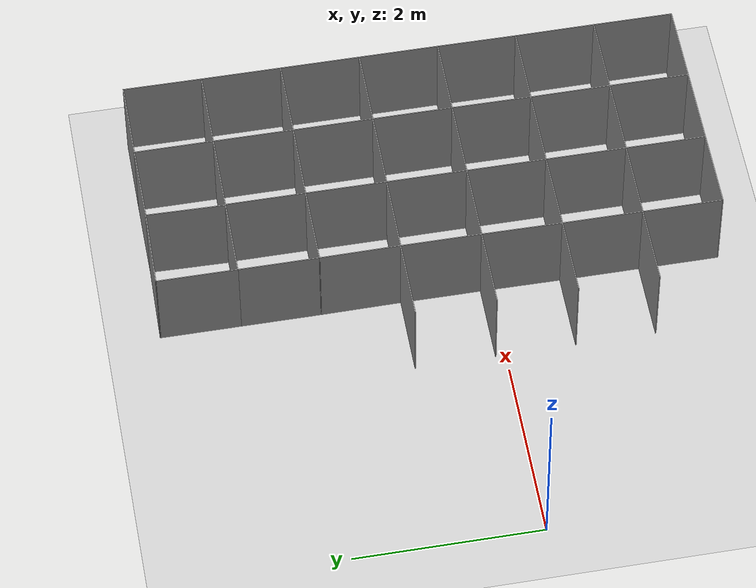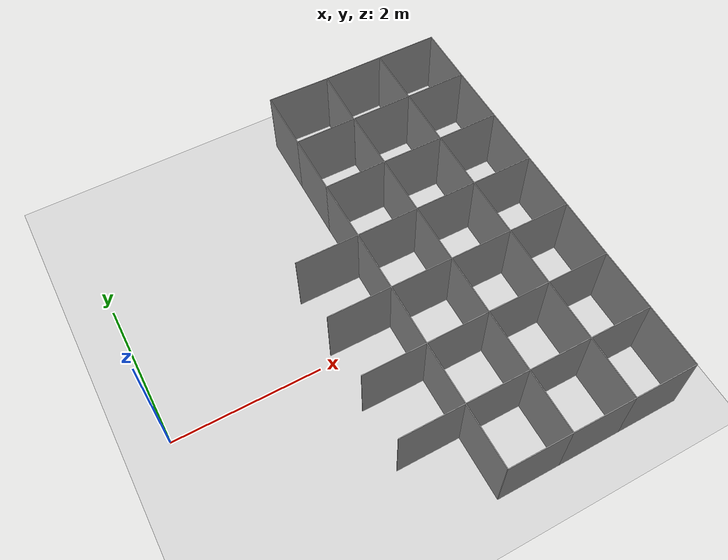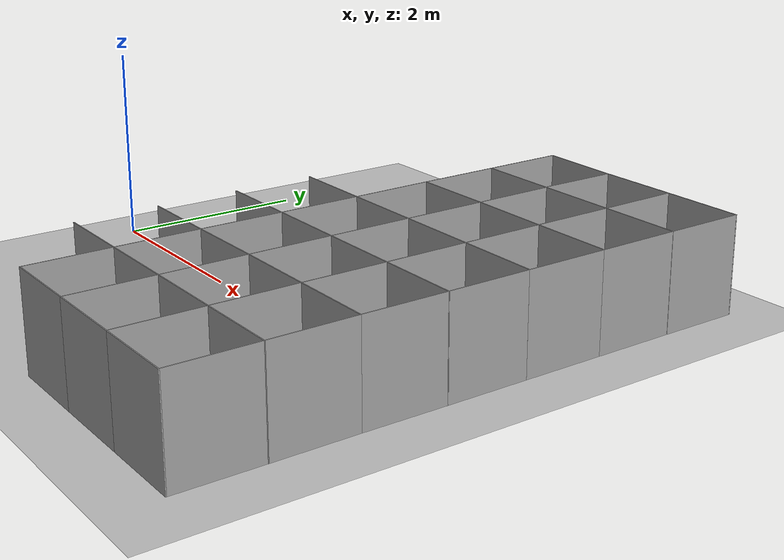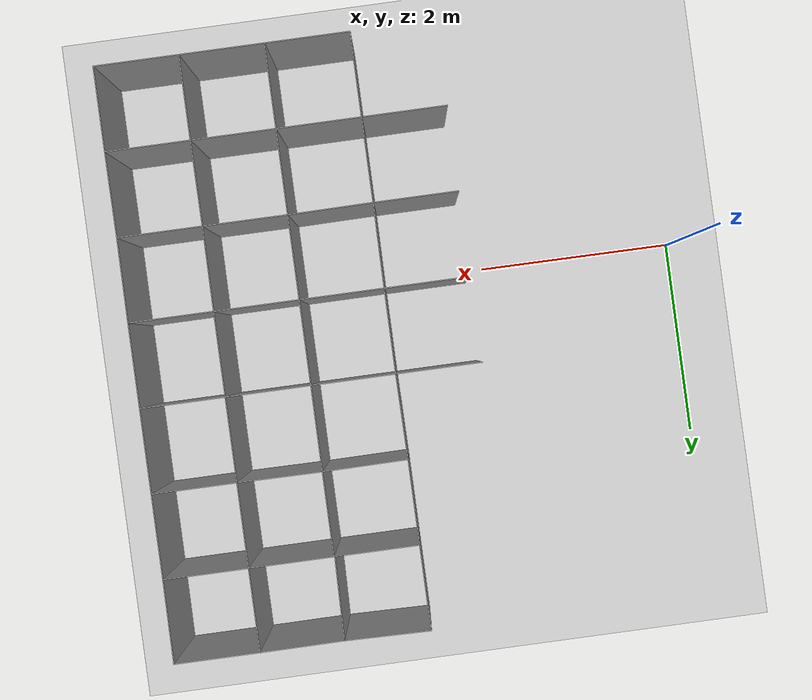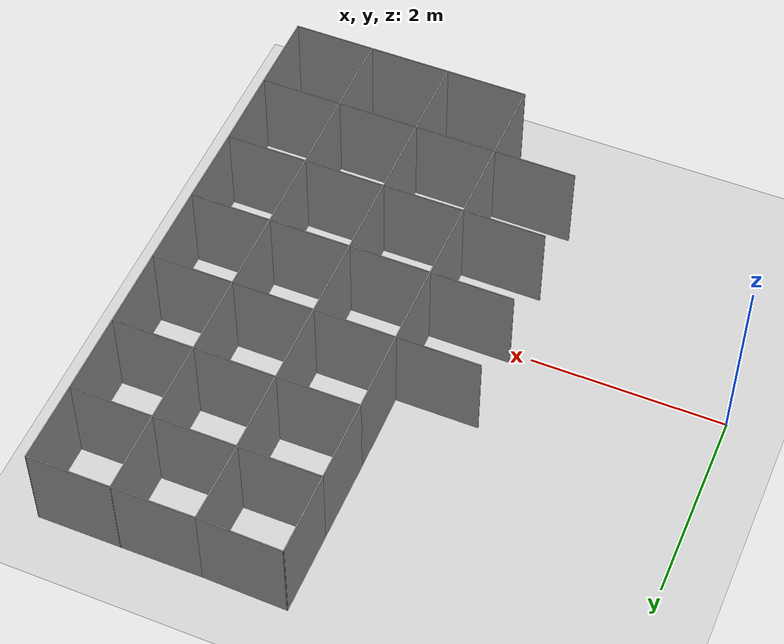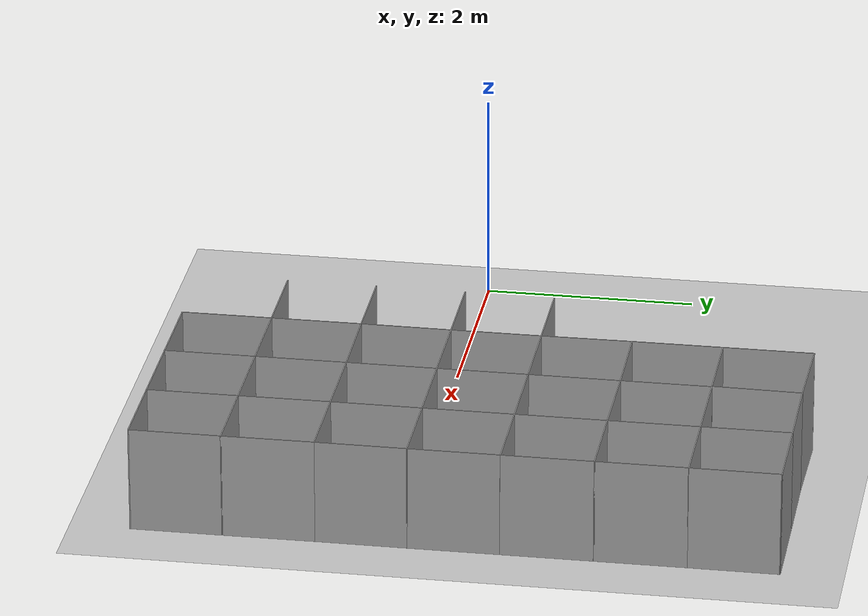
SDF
<sdf version="1.7">
 <world name="default">
  <include><uri>model://sun</uri></include>
  <include><uri>model://ground_plane</uri></include>
  <model name="Template">
   <pose>2.61937 0.534035 0 0 -0 0</pose>
   <link name="Wall_107">
    <collision name="Wall_107_Collision">
     <geometry><box><size>0.860029 0.01 1</size></box></geometry>
     <pose>0 0 0.5 0 -0 0</pose>
    </collision>
    <visual name="Wall_107_Visual">
     <pose>0 0 0.5 0 -0 0</pose>
     <geometry><box><size>0.860029 0.01 1</size></box></geometry>
     <material>
      <script><uri>file://media/materials/scripts/gazebo.material</uri><name>Gazebo/Grey</name></script>
      <ambient>1 1 1 1</ambient>
     </material>
     <meta><layer>0</layer></meta>
    </visual>
    <pose>0.432128 0.849965 0 0 -0 -1.56256</pose>
   </link>
   <link name="Wall_108">
    <collision name="Wall_108_Collision">
     <geometry><box><size>0.853 0.01 1</size></box></geometry>
     <pose>0 0 0.5 0 -0 0</pose>
    </collision>
    <visual name="Wall_108_Visual">
     <pose>0 0 0.5 0 -0 0</pose>
     <geometry><box><size>0.853 0.01 1</size></box></geometry>
     <material>
      <script><uri>file://media/materials/scripts/gazebo.material</uri><name>Gazebo/Grey</name></script>
      <ambient>1 1 1 1</ambient>
     </material>
     <meta><layer>0</layer></meta>
    </visual>
    <pose>0.857128 0.424965 0 0 -0 0</pose>
   </link>
   <link name="Wall_109">
    <collision name="Wall_109_Collision">
     <geometry><box><size>0.866126 0.01 1</size></box></geometry>
     <pose>0 0 0.5 0 -0 0</pose>
    </collision>
    <visual name="Wall_109_Visual">
     <pose>0 0 0.5 0 -0 0</pose>
     <geometry><box><size>0.866126 0.01 1</size></box></geometry>
     <material>
      <script><uri>file://media/materials/scripts/gazebo.material</uri><name>Gazebo/Grey</name></script>
      <ambient>1 1 1 1</ambient>
     </material>
     <meta><layer>0</layer></meta>
    </visual>
    <pose>1.27977 0.853028 0 0 -0 1.56812</pose>
   </link>
   <link name="Wall_110">
    <collision name="Wall_110_Collision">
     <geometry><box><size>0.857731 0.01 1</size></box></geometry>
     <pose>0 0 0.5 0 -0 0</pose>
    </collision>
    <visual name="Wall_110_Visual">
     <pose>0 0 0.5 0 -0 0</pose>
     <geometry><box><size>0.857731 0.01 1</size></box></geometry>
     <material>
      <script><uri>file://media/materials/scripts/gazebo.material</uri><name>Gazebo/Grey</name></script>
      <ambient>1 1 1 1</ambient>
     </material>
     <meta><layer>0</layer></meta>
    </visual>
    <pose>1.70477 1.27803 0 0 -0 -0.007226</pose>
   </link>
   <link name="Wall_111">
    <collision name="Wall_111_Collision">
     <geometry><box><size>0.86 0.01 1</size></box></geometry>
     <pose>0 0 0.5 0 -0 0</pose>
    </collision>
    <visual name="Wall_111_Visual">
     <pose>0 0 0.5 0 -0 0</pose>
     <geometry><box><size>0.86 0.01 1</size></box></geometry>
     <material>
      <script><uri>file://media/materials/scripts/gazebo.material</uri><name>Gazebo/Grey</name></script>
      <ambient>1 1 1 1</ambient>
     </material>
     <meta><layer>0</layer></meta>
    </visual>
    <pose>2.12863 0.849965 0 0 -0 -1.5708</pose>
   </link>
   <link name="Wall_112">
    <collision name="Wall_112_Collision">
     <geometry><box><size>0.86 0.01 1</size></box></geometry>
     <pose>0 0 0.5 0 -0 0</pose>
    </collision>
    <visual name="Wall_112_Visual">
     <pose>0 0 0.5 0 -0 0</pose>
     <geometry><box><size>0.86 0.01 1</size></box></geometry>
     <material>
      <script><uri>file://media/materials/scripts/gazebo.material</uri><name>Gazebo/Grey</name></script>
      <ambient>1 1 1 1</ambient>
     </material>
     <meta><layer>0</layer></meta>
    </visual>
    <pose>2.55363 0.424965 0 0 -0 0</pose>
   </link>
   <link name="Wall_115">
    <collision name="Wall_115_Collision">
     <geometry><box><size>0.86 0.01 1</size></box></geometry>
     <pose>0 0 0.5 0 -0 0</pose>
    </collision>
    <visual name="Wall_115_Visual">
     <pose>0 0 0.5 0 -0 0</pose>
     <geometry><box><size>0.86 0.01 1</size></box></geometry>
     <material>
      <script><uri>file://media/materials/scripts/gazebo.material</uri><name>Gazebo/Grey</name></script>
      <ambient>1 1 1 1</ambient>
     </material>
     <meta><layer>0</layer></meta>
    </visual>
    <pose>2.55363 1.27496 0 0 -0 3.14159</pose>
   </link>
   <link name="Wall_116">
    <collision name="Wall_116_Collision">
     <geometry><box><size>0.859555 0.01 1</size></box></geometry>
     <pose>0 0 0.5 0 -0 0</pose>
    </collision>
    <visual name="Wall_116_Visual">
     <pose>0 0 0.5 0 -0 0</pose>
     <geometry><box><size>0.859555 0.01 1</size></box></geometry>
     <material>
      <script><uri>file://media/materials/scripts/gazebo.material</uri><name>Gazebo/Grey</name></script>
      <ambient>1 1 1 1</ambient>
     </material>
     <meta><layer>0</layer></meta>
    </visual>
    <pose>2.12863 1.69996 0 0 -0 1.5708</pose>
   </link>
   <link name="Wall_117">
    <collision name="Wall_117_Collision">
     <geometry><box><size>0.866864 0.01 1</size></box></geometry>
     <pose>0 0 0.5 0 -0 0</pose>
    </collision>
    <visual name="Wall_117_Visual">
     <pose>0 0 0.5 0 -0 0</pose>
     <geometry><box><size>0.866864 0.01 1</size></box></geometry>
     <material>
      <script><uri>file://media/materials/scripts/gazebo.material</uri><name>Gazebo/Grey</name></script>
      <ambient>1 1 1 1</ambient>
     </material>
     <meta><layer>0</layer></meta>
    </visual>
    <pose>1.7002 2.12496 0 0 -0 3.14159</pose>
   </link>
   <link name="Wall_118">
    <collision name="Wall_118_Collision">
     <geometry><box><size>0.853879 0.01 1</size></box></geometry>
     <pose>0 0 0.5 0 -0 0</pose>
    </collision>
    <visual name="Wall_118_Visual">
     <pose>0 0 0.5 0 -0 0</pose>
     <geometry><box><size>0.853879 0.01 1</size></box></geometry>
     <material>
      <script><uri>file://media/materials/scripts/gazebo.material</uri><name>Gazebo/Grey</name></script>
      <ambient>1 1 1 1</ambient>
     </material>
     <meta><layer>0</layer></meta>
    </visual>
    <pose>1.28056 1.70303 0 0 -0 -1.56994</pose>
   </link>
   <link name="Wall_119">
    <collision name="Wall_119_Collision">
     <geometry><box><size>0.862313 0.01 1</size></box></geometry>
     <pose>0 0 0.5 0 -0 0</pose>
    </collision>
    <visual name="Wall_119_Visual">
     <pose>0 0 0.5 0 -0 0</pose>
     <geometry><box><size>0.862313 0.01 1</size></box></geometry>
     <material>
      <script><uri>file://media/materials/scripts/gazebo.material</uri><name>Gazebo/Grey</name></script>
      <ambient>1 1 1 1</ambient>
     </material>
     <meta><layer>0</layer></meta>
    </visual>
    <pose>0.854773 1.27803 0 0 -0 -3.13441</pose>
   </link>
   <link name="Wall_120">
    <collision name="Wall_120_Collision">
     <geometry><box><size>0.859555 0.01 1</size></box></geometry>
     <pose>0 0 0.5 0 -0 0</pose>
    </collision>
    <visual name="Wall_120_Visual">
     <pose>0 0 0.5 0 -0 0</pose>
     <geometry><box><size>0.859555 0.01 1</size></box></geometry>
     <material>
      <script><uri>file://media/materials/scripts/gazebo.material</uri><name>Gazebo/Grey</name></script>
      <ambient>1 1 1 1</ambient>
     </material>
     <meta><layer>0</layer></meta>
    </visual>
    <pose>0.428628 1.69996 0 0 -0 1.5708</pose>
   </link>
   <link name="Wall_136">
    <collision name="Wall_136_Collision">
     <geometry><box><size>0.86 0.01 1</size></box></geometry>
     <pose>0 0 0.5 0 -0 0</pose>
    </collision>
    <visual name="Wall_136_Visual">
     <pose>0 0 0.5 0 -0 0</pose>
     <geometry><box><size>0.86 0.01 1</size></box></geometry>
     <material>
      <script><uri>file://media/materials/scripts/gazebo.material</uri><name>Gazebo/Grey</name></script>
      <ambient>1 1 1 1</ambient>
     </material>
     <meta><layer>0</layer></meta>
    </visual>
    <pose>0.428628 2.54996 0 0 -0 -1.5708</pose>
   </link>
   <link name="Wall_137">
    <collision name="Wall_137_Collision">
     <geometry><box><size>0.853136 0.01 1</size></box></geometry>
     <pose>0 0 0.5 0 -0 0</pose>
    </collision>
    <visual name="Wall_137_Visual">
     <pose>0 0 0.5 0 -0 0</pose>
     <geometry><box><size>0.853136 0.01 1</size></box></geometry>
     <material>
      <script><uri>file://media/materials/scripts/gazebo.material</uri><name>Gazebo/Grey</name></script>
      <ambient>1 1 1 1</ambient>
     </material>
     <meta><layer>0</layer></meta>
    </visual>
    <pose>0.850196 2.12496 0 0 -0 0</pose>
   </link>
   <link name="Wall_138">
    <collision name="Wall_138_Collision">
     <geometry><box><size>0.84306 0.01 1</size></box></geometry>
     <pose>0 0 0.5 0 -0 0</pose>
    </collision>
    <visual name="Wall_138_Visual">
     <pose>0 0 0.5 0 -0 0</pose>
     <geometry><box><size>0.84306 0.01 1</size></box></geometry>
     <material>
      <script><uri>file://media/materials/scripts/gazebo.material</uri><name>Gazebo/Grey</name></script>
      <ambient>1 1 1 1</ambient>
     </material>
     <meta><layer>0</layer></meta>
    </visual>
    <pose>1.2802 2.54147 0 0 -0 1.55055</pose>
   </link>
   <link name="Wall_140">
    <collision name="Wall_140_Collision">
     <geometry><box><size>0.847001 0.01 1</size></box></geometry>
     <pose>0 0 0.5 0 -0 0</pose>
    </collision>
    <visual name="Wall_140_Visual">
     <pose>0 0 0.5 0 -0 0</pose>
     <geometry><box><size>0.847001 0.01 1</size></box></geometry>
     <material>
      <script><uri>file://media/materials/scripts/gazebo.material</uri><name>Gazebo/Grey</name></script>
      <ambient>1 1 1 1</ambient>
     </material>
     <meta><layer>0</layer></meta>
    </visual>
    <pose>2.12813 2.54346 0 0 -0 -1.5696</pose>
   </link>
   <link name="Wall_141">
    <collision name="Wall_141_Collision">
     <geometry><box><size>0.86 0.01 1</size></box></geometry>
     <pose>0 0 0.5 0 -0 0</pose>
    </collision>
    <visual name="Wall_141_Visual">
     <pose>0 0 0.5 0 -0 0</pose>
     <geometry><box><size>0.86 0.01 1</size></box></geometry>
     <material>
      <script><uri>file://media/materials/scripts/gazebo.material</uri><name>Gazebo/Grey</name></script>
      <ambient>1 1 1 1</ambient>
     </material>
     <meta><layer>0</layer></meta>
    </visual>
    <pose>2.55363 2.12496 0 0 -0 0</pose>
   </link>
   <link name="Wall_142">
    <collision name="Wall_142_Collision">
     <geometry><box><size>0.84701 0.01 1</size></box></geometry>
     <pose>0 0 0.5 0 -0 0</pose>
    </collision>
    <visual name="Wall_142_Visual">
     <pose>0 0 0.5 0 -0 0</pose>
     <geometry><box><size>0.84701 0.01 1</size></box></geometry>
     <material>
      <script><uri>file://media/materials/scripts/gazebo.material</uri><name>Gazebo/Grey</name></script>
      <ambient>1 1 1 1</ambient>
     </material>
     <meta><layer>0</layer></meta>
    </visual>
    <pose>2.98063 2.54346 0 0 -0 1.56602</pose>
   </link>
   <link name="Wall_143">
    <collision name="Wall_143_Collision">
     <geometry><box><size>0.865 0.01 1</size></box></geometry>
     <pose>0 0 0.5 0 -0 0</pose>
    </collision>
    <visual name="Wall_143_Visual">
     <pose>0 0 0.5 0 -0 0</pose>
     <geometry><box><size>0.865 0.01 1</size></box></geometry>
     <material>
      <script><uri>file://media/materials/scripts/gazebo.material</uri><name>Gazebo/Grey</name></script>
      <ambient>1 1 1 1</ambient>
     </material>
     <meta><layer>0</layer></meta>
    </visual>
    <pose>2.55513 2.96197 0 0 -0 3.14159</pose>
   </link>
   <link name="Wall_144">
    <collision name="Wall_144_Collision">
     <geometry><box><size>0.84901 0.01 1</size></box></geometry>
     <pose>0 0 0.5 0 -0 0</pose>
    </collision>
    <visual name="Wall_144_Visual">
     <pose>0 0 0.5 0 -0 0</pose>
     <geometry><box><size>0.84901 0.01 1</size></box></geometry>
     <material>
      <script><uri>file://media/materials/scripts/gazebo.material</uri><name>Gazebo/Grey</name></script>
      <ambient>1 1 1 1</ambient>
     </material>
     <meta><layer>0</layer></meta>
    </visual>
    <pose>1.70813 2.95996 0 0 -0 -3.13682</pose>
   </link>
   <link name="Wall_145">
    <collision name="Wall_145_Collision">
     <geometry><box><size>0.870168 0.01 1</size></box></geometry>
     <pose>0 0 0.5 0 -0 0</pose>
    </collision>
    <visual name="Wall_145_Visual">
     <pose>0 0 0.5 0 -0 0</pose>
     <geometry><box><size>0.870168 0.01 1</size></box></geometry>
     <material>
      <script><uri>file://media/materials/scripts/gazebo.material</uri><name>Gazebo/Grey</name></script>
      <ambient>1 1 1 1</ambient>
     </material>
     <meta><layer>0</layer></meta>
    </visual>
    <pose>0.858628 2.96646 0 0 -0 3.12183</pose>
   </link>
   <link name="Wall_161">
    <collision name="Wall_161_Collision">
     <geometry><box><size>0.860147 0.01 1</size></box></geometry>
     <pose>0 0 0.5 0 -0 0</pose>
    </collision>
    <visual name="Wall_161_Visual">
     <pose>0 0 0.5 0 -0 0</pose>
     <geometry><box><size>0.860147 0.01 1</size></box></geometry>
     <material>
      <script><uri>file://media/materials/scripts/gazebo.material</uri><name>Gazebo/Grey</name></script>
      <ambient>1 1 1 1</ambient>
     </material>
     <meta><layer>0</layer></meta>
    </visual>
    <pose>0.853628 -2.97504 0 0 -0 0</pose>
   </link>
   <link name="Wall_162">
    <collision name="Wall_162_Collision">
     <geometry><box><size>0.860147 0.01 1</size></box></geometry>
     <pose>0 0 0.5 0 -0 0</pose>
    </collision>
    <visual name="Wall_162_Visual">
     <pose>0 0 0.5 0 -0 0</pose>
     <geometry><box><size>0.860147 0.01 1</size></box></geometry>
     <material>
      <script><uri>file://media/materials/scripts/gazebo.material</uri><name>Gazebo/Grey</name></script>
      <ambient>1 1 1 1</ambient>
     </material>
     <meta><layer>0</layer></meta>
    </visual>
    <pose>1.70363 -2.97504 0 0 -0 0</pose>
   </link>
   <link name="Wall_163">
    <collision name="Wall_163_Collision">
     <geometry><box><size>0.860147 0.01 1</size></box></geometry>
     <pose>0 0 0.5 0 -0 0</pose>
    </collision>
    <visual name="Wall_163_Visual">
     <pose>0 0 0.5 0 -0 0</pose>
     <geometry><box><size>0.860147 0.01 1</size></box></geometry>
     <material>
      <script><uri>file://media/materials/scripts/gazebo.material</uri><name>Gazebo/Grey</name></script>
      <ambient>1 1 1 1</ambient>
     </material>
     <meta><layer>0</layer></meta>
    </visual>
    <pose>2.55363 -2.97504 0 0 -0 0</pose>
   </link>
   <link name="Wall_164">
    <collision name="Wall_164_Collision">
     <geometry><box><size>0.859555 0.01 1</size></box></geometry>
     <pose>0 0 0.5 0 -0 0</pose>
    </collision>
    <visual name="Wall_164_Visual">
     <pose>0 0 0.5 0 -0 0</pose>
     <geometry><box><size>0.859555 0.01 1</size></box></geometry>
     <material>
      <script><uri>file://media/materials/scripts/gazebo.material</uri><name>Gazebo/Grey</name></script>
      <ambient>1 1 1 1</ambient>
     </material>
     <meta><layer>0</layer></meta>
    </visual>
    <pose>2.97863 -2.55003 0 0 -0 1.5708</pose>
   </link>
   <link name="Wall_165">
    <collision name="Wall_165_Collision">
     <geometry><box><size>0.864282 0.01 1</size></box></geometry>
     <pose>0 0 0.5 0 -0 0</pose>
    </collision>
    <visual name="Wall_165_Visual">
     <pose>0 0 0.5 0 -0 0</pose>
     <geometry><box><size>0.864282 0.01 1</size></box></geometry>
     <material>
      <script><uri>file://media/materials/scripts/gazebo.material</uri><name>Gazebo/Grey</name></script>
      <ambient>1 1 1 1</ambient>
     </material>
     <meta><layer>0</layer></meta>
    </visual>
    <pose>2.97663 -1.69803 0 0 -0 1.57548</pose>
   </link>
   <link name="Wall_166">
    <collision name="Wall_166_Collision">
     <geometry><box><size>0.855565 0.01 1</size></box></geometry>
     <pose>0 0 0.5 0 -0 0</pose>
    </collision>
    <visual name="Wall_166_Visual">
     <pose>0 0 0.5 0 -0 0</pose>
     <geometry><box><size>0.855565 0.01 1</size></box></geometry>
     <material>
      <script><uri>file://media/materials/scripts/gazebo.material</uri><name>Gazebo/Grey</name></script>
      <ambient>1 1 1 1</ambient>
     </material>
     <meta><layer>0</layer></meta>
    </visual>
    <pose>2.97663 -0.848035 0 0 -0 1.56607</pose>
   </link>
   <link name="Wall_167">
    <collision name="Wall_167_Collision">
     <geometry><box><size>0.859555 0.01 1</size></box></geometry>
     <pose>0 0 0.5 0 -0 0</pose>
    </collision>
    <visual name="Wall_167_Visual">
     <pose>0 0 0.5 0 -0 0</pose>
     <geometry><box><size>0.859555 0.01 1</size></box></geometry>
     <material>
      <script><uri>file://media/materials/scripts/gazebo.material</uri><name>Gazebo/Grey</name></script>
      <ambient>1 1 1 1</ambient>
     </material>
     <meta><layer>0</layer></meta>
    </visual>
    <pose>2.97863 -3.5e-05 0 0 -0 1.5708</pose>
   </link>
   <link name="Wall_168">
    <collision name="Wall_168_Collision">
     <geometry><box><size>0.859555 0.01 1</size></box></geometry>
     <pose>0 0 0.5 0 -0 0</pose>
    </collision>
    <visual name="Wall_168_Visual">
     <pose>0 0 0.5 0 -0 0</pose>
     <geometry><box><size>0.859555 0.01 1</size></box></geometry>
     <material>
      <script><uri>file://media/materials/scripts/gazebo.material</uri><name>Gazebo/Grey</name></script>
      <ambient>1 1 1 1</ambient>
     </material>
     <meta><layer>0</layer></meta>
    </visual>
    <pose>2.97863 0.849965 0 0 -0 1.5708</pose>
   </link>
   <link name="Wall_169">
    <collision name="Wall_169_Collision">
     <geometry><box><size>0.859555 0.01 1</size></box></geometry>
     <pose>0 0 0.5 0 -0 0</pose>
    </collision>
    <visual name="Wall_169_Visual">
     <pose>0 0 0.5 0 -0 0</pose>
     <geometry><box><size>0.859555 0.01 1</size></box></geometry>
     <material>
      <script><uri>file://media/materials/scripts/gazebo.material</uri><name>Gazebo/Grey</name></script>
      <ambient>1 1 1 1</ambient>
     </material>
     <meta><layer>0</layer></meta>
    </visual>
    <pose>2.97863 1.69996 0 0 -0 1.5708</pose>
   </link>
   <link name="Wall_50">
    <collision name="Wall_50_Collision">
     <geometry><box><size>0.86 0.01 1</size></box></geometry>
     <pose>0 0 0.5 0 -0 0</pose>
    </collision>
    <visual name="Wall_50_Visual">
     <pose>0 0 0.5 0 -0 0</pose>
     <geometry><box><size>0.86 0.01 1</size></box></geometry>
     <material>
      <script><uri>file://media/materials/scripts/gazebo.material</uri><name>Gazebo/Grey</name></script>
      <ambient>1 1 1 1</ambient>
     </material>
     <meta><layer>0</layer></meta>
    </visual>
    <pose>0.003628 -2.12504 0 0 -0 0</pose>
   </link>
   <link name="Wall_51">
    <collision name="Wall_51_Collision">
     <geometry><box><size>0.86 0.01 1</size></box></geometry>
     <pose>0 0 0.5 0 -0 0</pose>
    </collision>
    <visual name="Wall_51_Visual">
     <pose>0 0 0.5 0 -0 0</pose>
     <geometry><box><size>0.86 0.01 1</size></box></geometry>
     <material>
      <script><uri>file://media/materials/scripts/gazebo.material</uri><name>Gazebo/Grey</name></script>
      <ambient>1 1 1 1</ambient>
     </material>
     <meta><layer>0</layer></meta>
    </visual>
    <pose>0.428628 -2.55003 0 0 -0 -1.5708</pose>
   </link>
   <link name="Wall_53">
    <collision name="Wall_53_Collision">
     <geometry><box><size>0.859555 0.01 1</size></box></geometry>
     <pose>0 0 0.5 0 -0 0</pose>
    </collision>
    <visual name="Wall_53_Visual">
     <pose>0 0 0.5 0 -0 0</pose>
     <geometry><box><size>0.859555 0.01 1</size></box></geometry>
     <material>
      <script><uri>file://media/materials/scripts/gazebo.material</uri><name>Gazebo/Grey</name></script>
      <ambient>1 1 1 1</ambient>
     </material>
     <meta><layer>0</layer></meta>
    </visual>
    <pose>1.27863 -2.55003 0 0 -0 1.5708</pose>
   </link>
   <link name="Wall_54">
    <collision name="Wall_54_Collision">
     <geometry><box><size>0.86 0.01 1</size></box></geometry>
     <pose>0 0 0.5 0 -0 0</pose>
    </collision>
    <visual name="Wall_54_Visual">
     <pose>0 0 0.5 0 -0 0</pose>
     <geometry><box><size>0.86 0.01 1</size></box></geometry>
     <material>
      <script><uri>file://media/materials/scripts/gazebo.material</uri><name>Gazebo/Grey</name></script>
      <ambient>1 1 1 1</ambient>
     </material>
     <meta><layer>0</layer></meta>
    </visual>
    <pose>1.70363 -2.12504 0 0 -0 0</pose>
   </link>
   <link name="Wall_55">
    <collision name="Wall_55_Collision">
     <geometry><box><size>0.86 0.01 1</size></box></geometry>
     <pose>0 0 0.5 0 -0 0</pose>
    </collision>
    <visual name="Wall_55_Visual">
     <pose>0 0 0.5 0 -0 0</pose>
     <geometry><box><size>0.86 0.01 1</size></box></geometry>
     <material>
      <script><uri>file://media/materials/scripts/gazebo.material</uri><name>Gazebo/Grey</name></script>
      <ambient>1 1 1 1</ambient>
     </material>
     <meta><layer>0</layer></meta>
    </visual>
    <pose>2.12863 -2.55003 0 0 -0 -1.5708</pose>
   </link>
   <link name="Wall_58">
    <collision name="Wall_58_Collision">
     <geometry><box><size>0.86 0.01 1</size></box></geometry>
     <pose>0 0 0.5 0 -0 0</pose>
    </collision>
    <visual name="Wall_58_Visual">
     <pose>0 0 0.5 0 -0 0</pose>
     <geometry><box><size>0.86 0.01 1</size></box></geometry>
     <material>
      <script><uri>file://media/materials/scripts/gazebo.material</uri><name>Gazebo/Grey</name></script>
      <ambient>1 1 1 1</ambient>
     </material>
     <meta><layer>0</layer></meta>
    </visual>
    <pose>2.55363 -2.12504 0 0 -0 3.14159</pose>
   </link>
   <link name="Wall_59">
    <collision name="Wall_59_Collision">
     <geometry><box><size>0.864282 0.01 1</size></box></geometry>
     <pose>0 0 0.5 0 -0 0</pose>
    </collision>
    <visual name="Wall_59_Visual">
     <pose>0 0 0.5 0 -0 0</pose>
     <geometry><box><size>0.864282 0.01 1</size></box></geometry>
     <material>
      <script><uri>file://media/materials/scripts/gazebo.material</uri><name>Gazebo/Grey</name></script>
      <ambient>1 1 1 1</ambient>
     </material>
     <meta><layer>0</layer></meta>
    </visual>
    <pose>2.12663 -1.69803 0 0 -0 1.57548</pose>
   </link>
   <link name="Wall_60">
    <collision name="Wall_60_Collision">
     <geometry><box><size>0.856002 0.01 1</size></box></geometry>
     <pose>0 0 0.5 0 -0 0</pose>
    </collision>
    <visual name="Wall_60_Visual">
     <pose>0 0 0.5 0 -0 0</pose>
     <geometry><box><size>0.856002 0.01 1</size></box></geometry>
     <material>
      <script><uri>file://media/materials/scripts/gazebo.material</uri><name>Gazebo/Grey</name></script>
      <ambient>1 1 1 1</ambient>
     </material>
     <meta><layer>0</layer></meta>
    </visual>
    <pose>1.70163 -1.27004 0 0 -0 3.13923</pose>
   </link>
   <link name="Wall_61">
    <collision name="Wall_61_Collision">
     <geometry><box><size>0.866 0.01 1</size></box></geometry>
     <pose>0 0 0.5 0 -0 0</pose>
    </collision>
    <visual name="Wall_61_Visual">
     <pose>0 0 0.5 0 -0 0</pose>
     <geometry><box><size>0.866 0.01 1</size></box></geometry>
     <material>
      <script><uri>file://media/materials/scripts/gazebo.material</uri><name>Gazebo/Grey</name></script>
      <ambient>1 1 1 1</ambient>
     </material>
     <meta><layer>0</layer></meta>
    </visual>
    <pose>1.27863 -1.69704 0 0 -0 -1.5708</pose>
   </link>
   <link name="Wall_62">
    <collision name="Wall_62_Collision">
     <geometry><box><size>0.86 0.01 1</size></box></geometry>
     <pose>0 0 0.5 0 -0 0</pose>
    </collision>
    <visual name="Wall_62_Visual">
     <pose>0 0 0.5 0 -0 0</pose>
     <geometry><box><size>0.86 0.01 1</size></box></geometry>
     <material>
      <script><uri>file://media/materials/scripts/gazebo.material</uri><name>Gazebo/Grey</name></script>
      <ambient>1 1 1 1</ambient>
     </material>
     <meta><layer>0</layer></meta>
    </visual>
    <pose>0.853628 -2.12504 0 0 -0 3.14159</pose>
   </link>
   <link name="Wall_63">
    <collision name="Wall_63_Collision">
     <geometry><box><size>0.859555 0.01 1</size></box></geometry>
     <pose>0 0 0.5 0 -0 0</pose>
    </collision>
    <visual name="Wall_63_Visual">
     <pose>0 0 0.5 0 -0 0</pose>
     <geometry><box><size>0.859555 0.01 1</size></box></geometry>
     <material>
      <script><uri>file://media/materials/scripts/gazebo.material</uri><name>Gazebo/Grey</name></script>
      <ambient>1 1 1 1</ambient>
     </material>
     <meta><layer>0</layer></meta>
    </visual>
    <pose>0.428628 -1.70003 0 0 -0 1.5708</pose>
   </link>
   <link name="Wall_64">
    <collision name="Wall_64_Collision">
     <geometry><box><size>0.86 0.01 1</size></box></geometry>
     <pose>0 0 0.5 0 -0 0</pose>
    </collision>
    <visual name="Wall_64_Visual">
     <pose>0 0 0.5 0 -0 0</pose>
     <geometry><box><size>0.86 0.01 1</size></box></geometry>
     <material>
      <script><uri>file://media/materials/scripts/gazebo.material</uri><name>Gazebo/Grey</name></script>
      <ambient>1 1 1 1</ambient>
     </material>
     <meta><layer>0</layer></meta>
    </visual>
    <pose>0.003628 -1.27503 0 0 -0 3.14159</pose>
   </link>
   <link name="Wall_78">
    <collision name="Wall_78_Collision">
     <geometry><box><size>0.866 0.01 1</size></box></geometry>
     <pose>0 0 0.5 0 -0 0</pose>
    </collision>
    <visual name="Wall_78_Visual">
     <pose>0 0 0.5 0 -0 0</pose>
     <geometry><box><size>0.866 0.01 1</size></box></geometry>
     <material>
      <script><uri>file://media/materials/scripts/gazebo.material</uri><name>Gazebo/Grey</name></script>
      <ambient>1 1 1 1</ambient>
     </material>
     <meta><layer>0</layer></meta>
    </visual>
    <pose>0.006628 -0.425035 0 0 -0 0</pose>
   </link>
   <link name="Wall_79">
    <collision name="Wall_79_Collision">
     <geometry><box><size>0.86 0.01 1</size></box></geometry>
     <pose>0 0 0.5 0 -0 0</pose>
    </collision>
    <visual name="Wall_79_Visual">
     <pose>0 0 0.5 0 -0 0</pose>
     <geometry><box><size>0.86 0.01 1</size></box></geometry>
     <material>
      <script><uri>file://media/materials/scripts/gazebo.material</uri><name>Gazebo/Grey</name></script>
      <ambient>1 1 1 1</ambient>
     </material>
     <meta><layer>0</layer></meta>
    </visual>
    <pose>0.431628 -0.850035 0 0 -0 -1.57786</pose>
   </link>
   <link name="Wall_80">
    <collision name="Wall_80_Collision">
     <geometry><box><size>0.860024 0.01 1</size></box></geometry>
     <pose>0 0 0.5 0 -0 0</pose>
    </collision>
    <visual name="Wall_80_Visual">
     <pose>0 0 0.5 0 -0 0</pose>
     <geometry><box><size>0.860024 0.01 1</size></box></geometry>
     <material>
      <script><uri>file://media/materials/scripts/gazebo.material</uri><name>Gazebo/Grey</name></script>
      <ambient>1 1 1 1</ambient>
     </material>
     <meta><layer>0</layer></meta>
    </visual>
    <pose>0.853628 -1.27204 0 0 -0 0.007059</pose>
   </link>
   <link name="Wall_81">
    <collision name="Wall_81_Collision">
     <geometry><box><size>0.854 0.01 1</size></box></geometry>
     <pose>0 0 0.5 0 -0 0</pose>
    </collision>
    <visual name="Wall_81_Visual">
     <pose>0 0 0.5 0 -0 0</pose>
     <geometry><box><size>0.854 0.01 1</size></box></geometry>
     <material>
      <script><uri>file://media/materials/scripts/gazebo.material</uri><name>Gazebo/Grey</name></script>
      <ambient>1 1 1 1</ambient>
     </material>
     <meta><layer>0</layer></meta>
    </visual>
    <pose>1.27863 -0.847035 0 0 -0 1.5708</pose>
   </link>
   <link name="Wall_82">
    <collision name="Wall_82_Collision">
     <geometry><box><size>0.86 0.01 1</size></box></geometry>
     <pose>0 0 0.5 0 -0 0</pose>
    </collision>
    <visual name="Wall_82_Visual">
     <pose>0 0 0.5 0 -0 0</pose>
     <geometry><box><size>0.86 0.01 1</size></box></geometry>
     <material>
      <script><uri>file://media/materials/scripts/gazebo.material</uri><name>Gazebo/Grey</name></script>
      <ambient>1 1 1 1</ambient>
     </material>
     <meta><layer>0</layer></meta>
    </visual>
    <pose>1.70363 -0.425035 0 0 -0 0</pose>
   </link>
   <link name="Wall_83">
    <collision name="Wall_83_Collision">
     <geometry><box><size>0.856009 0.01 1</size></box></geometry>
     <pose>0 0 0.5 0 -0 0</pose>
    </collision>
    <visual name="Wall_83_Visual">
     <pose>0 0 0.5 0 -0 0</pose>
     <geometry><box><size>0.856009 0.01 1</size></box></geometry>
     <material>
      <script><uri>file://media/materials/scripts/gazebo.material</uri><name>Gazebo/Grey</name></script>
      <ambient>1 1 1 1</ambient>
     </material>
     <meta><layer>0</layer></meta>
    </visual>
    <pose>2.12663 -0.848035 0 0 -0 -1.57552</pose>
   </link>
   <link name="Wall_84">
    <collision name="Wall_84_Collision">
     <geometry><box><size>0.85976 0.01 1</size></box></geometry>
     <pose>0 0 0.5 0 -0 0</pose>
    </collision>
    <visual name="Wall_84_Visual">
     <pose>0 0 0.5 0 -0 0</pose>
     <geometry><box><size>0.85976 0.01 1</size></box></geometry>
     <material>
      <script><uri>file://media/materials/scripts/gazebo.material</uri><name>Gazebo/Grey</name></script>
      <ambient>1 1 1 1</ambient>
     </material>
     <meta><layer>0</layer></meta>
    </visual>
    <pose>2.54963 -1.27103 0 0 -0 0</pose>
   </link>
   <link name="Wall_86">
    <collision name="Wall_86_Collision">
     <geometry><box><size>0.86 0.01 1</size></box></geometry>
     <pose>0 0 0.5 0 -0 0</pose>
    </collision>
    <visual name="Wall_86_Visual">
     <pose>0 0 0.5 0 -0 0</pose>
     <geometry><box><size>0.86 0.01 1</size></box></geometry>
     <material>
      <script><uri>file://media/materials/scripts/gazebo.material</uri><name>Gazebo/Grey</name></script>
      <ambient>1 1 1 1</ambient>
     </material>
     <meta><layer>0</layer></meta>
    </visual>
    <pose>2.55363 -0.425035 0 0 -0 3.14159</pose>
   </link>
   <link name="Wall_87">
    <collision name="Wall_87_Collision">
     <geometry><box><size>0.86 0.01 1</size></box></geometry>
     <pose>0 0 0.5 0 -0 0</pose>
    </collision>
    <visual name="Wall_87_Visual">
     <pose>0 0 0.5 0 -0 0</pose>
     <geometry><box><size>0.86 0.01 1</size></box></geometry>
     <material>
      <script><uri>file://media/materials/scripts/gazebo.material</uri><name>Gazebo/Grey</name></script>
      <ambient>1 1 1 1</ambient>
     </material>
     <meta><layer>0</layer></meta>
    </visual>
    <pose>2.12863 -3.5e-05 0 0 -0 1.5708</pose>
   </link>
   <link name="Wall_88">
    <collision name="Wall_88_Collision">
     <geometry><box><size>0.86 0.01 1</size></box></geometry>
     <pose>0 0 0.5 0 -0 0</pose>
    </collision>
    <visual name="Wall_88_Visual">
     <pose>0 0 0.5 0 -0 0</pose>
     <geometry><box><size>0.86 0.01 1</size></box></geometry>
     <material>
      <script><uri>file://media/materials/scripts/gazebo.material</uri><name>Gazebo/Grey</name></script>
      <ambient>1 1 1 1</ambient>
     </material>
     <meta><layer>0</layer></meta>
    </visual>
    <pose>1.70363 0.424965 0 0 -0 3.14159</pose>
   </link>
   <link name="Wall_89">
    <collision name="Wall_89_Collision">
     <geometry><box><size>0.86 0.01 1</size></box></geometry>
     <pose>0 0 0.5 0 -0 0</pose>
    </collision>
    <visual name="Wall_89_Visual">
     <pose>0 0 0.5 0 -0 0</pose>
     <geometry><box><size>0.86 0.01 1</size></box></geometry>
     <material>
      <script><uri>file://media/materials/scripts/gazebo.material</uri><name>Gazebo/Grey</name></script>
      <ambient>1 1 1 1</ambient>
     </material>
     <meta><layer>0</layer></meta>
    </visual>
    <pose>1.27863 -3.5e-05 0 0 -0 -1.5708</pose>
   </link>
   <link name="Wall_90">
    <collision name="Wall_90_Collision">
     <geometry><box><size>0.854 0.01 1</size></box></geometry>
     <pose>0 0 0.5 0 -0 0</pose>
    </collision>
    <visual name="Wall_90_Visual">
     <pose>0 0 0.5 0 -0 0</pose>
     <geometry><box><size>0.854 0.01 1</size></box></geometry>
     <material>
      <script><uri>file://media/materials/scripts/gazebo.material</uri><name>Gazebo/Grey</name></script>
      <ambient>1 1 1 1</ambient>
     </material>
     <meta><layer>0</layer></meta>
    </visual>
    <pose>0.856628 -0.425035 0 0 -0 3.14159</pose>
   </link>
   <link name="Wall_91">
    <collision name="Wall_91_Collision">
     <geometry><box><size>0.859555 0.01 1</size></box></geometry>
     <pose>0 0 0.5 0 -0 0</pose>
    </collision>
    <visual name="Wall_91_Visual">
     <pose>0 0 0.5 0 -0 0</pose>
     <geometry><box><size>0.859555 0.01 1</size></box></geometry>
     <material>
      <script><uri>file://media/materials/scripts/gazebo.material</uri><name>Gazebo/Grey</name></script>
      <ambient>1 1 1 1</ambient>
     </material>
     <meta><layer>0</layer></meta>
    </visual>
    <pose>0.435128 -3.5e-05 0 0 -0 1.56962</pose>
   </link>
   <link name="Wall_92">
    <collision name="Wall_92_Collision">
     <geometry><box><size>0.867 0.01 1</size></box></geometry>
     <pose>0 0 0.5 0 -0 0</pose>
    </collision>
    <visual name="Wall_92_Visual">
     <pose>0 0 0.5 0 -0 0</pose>
     <geometry><box><size>0.867 0.01 1</size></box></geometry>
     <material>
      <script><uri>file://media/materials/scripts/gazebo.material</uri><name>Gazebo/Grey</name></script>
      <ambient>1 1 1 1</ambient>
     </material>
     <meta><layer>0</layer></meta>
    </visual>
    <pose>0.007128 0.424965 0 0 -0 3.14159</pose>
   </link>
   <static>1</static>
  </model>
 </world>
</sdf>
